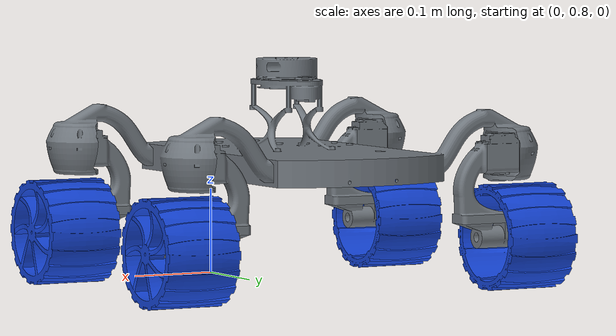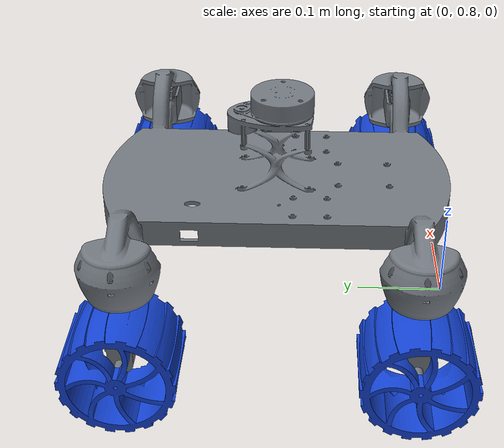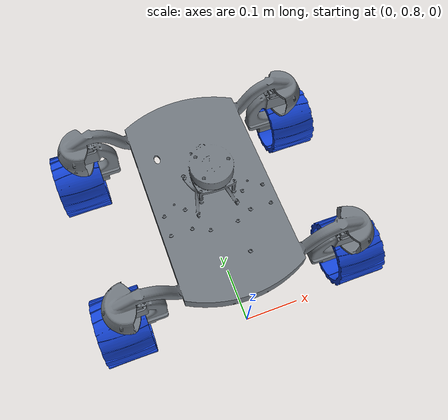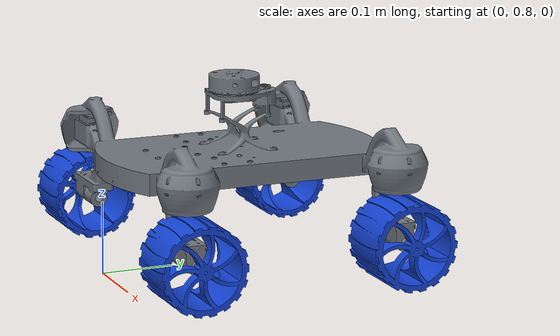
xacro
<?xml version="1.0"?>
<robot xmlns:xacro="http://www.ros.org/wiki/xacro" >

    <link name="base_link">

    </link>

    <joint name="chassis_joint" type="fixed">
        <parent link="base_link" />
        <child link="chassis_link"/>
        <origin rpy="0 0 0" xyz="0 1 .15"/>
    </joint>

    <link name="chassis_link">
        <visual>
            <origin rpy="${pi/2} 0 0" xyz="0 0 .01" />
            <geometry>
                <mesh filename="file:///home/joel/dev_ws/src/rover_one/description/G_Assy_Base.dae" scale="1 1 1"/>
            </geometry>
        </visual>
        <collision>
            <origin rpy="${pi/2} 0 0" xyz="0 0 .01" />
            <geometry>
                <mesh filename="file:///home/joel/dev_ws/src/rover_one/description/G_Assy_Base.dae" scale="1 1 1"/>
            </geometry>
        </collision>
    </link>

    <joint name="wheel_arm_RF_joint" type="revolute" >
        <parent link="chassis_link"/>
        <child link="wheel_arm_RF_link" />
        <origin rpy="0 0 0" xyz="-.2 -.15 .0375" />
        <axis xyz="0 0 1"/>
        <limit lower="0.7854" upper="-0.7854" effort="10.0" velocity="2.0"/>
    </joint>

    <link name="wheel_arm_RF_link" >
        <visual>
            <origin rpy="${pi/2} 0 ${pi/2}" xyz="0 0 0"/>+
            <geometry>
                <mesh filename="file:///home/joel/dev_ws/src/rover_one/description/G_Wheel_Arm.dae" scale="1 1 1"/>
            </geometry>
        </visual>
        <collision>
            <origin rpy="${pi/2} 0 ${pi/2}" xyz="0 0 0"/>+
            <geometry>
                <mesh filename="file:///home/joel/dev_ws/src/rover_one/description/G_Wheel_Arm.dae" scale="1 1 1"/>
            </geometry>
        </collision>
    </link>

    <joint name="wheel_arm_LF_joint" type="revolute" >
        <parent link="chassis_link"/>
        <child link="wheel_arm_LF_link" />
        <origin rpy="0 0 0" xyz=".2 -.15 .0375" />
        <axis xyz="0 0 1"/>
        <limit lower="0.7854" upper="-0.7854" effort="10.0" velocity="2.0"/>
    </joint>

    <link name="wheel_arm_LF_link" >
        <visual>
            <origin rpy="${pi/2} 0 -${pi/2}" xyz="0 0 0"/>+
            <geometry>
                <mesh filename="file:///home/joel/dev_ws/src/rover_one/description/G_Wheel_Arm.dae" scale="1 1 1"/>
            </geometry>
        </visual>
        <collision>
            <origin rpy="${pi/2} 0 -${pi/2}" xyz="0 0 0"/>+
            <geometry>
                <mesh filename="file:///home/joel/dev_ws/src/rover_one/description/G_Wheel_Arm.dae" scale="1 1 1"/>
            </geometry>
        </collision>
    </link>
    <!--Red x, green y, blue z -->
    <joint name="wheel_arm_RR_joint" type="revolute" >
        <parent link="chassis_link"/>
        <child link="wheel_arm_RR_link" />
        <origin rpy="0 0 0" xyz="-.2 .15 .0375" />
        <axis xyz="0 0 1"/>
        <limit lower="0.7854" upper="-0.7854" effort="10.0" velocity="2.0"/>
    </joint>

    <link name="wheel_arm_RR_link" >
        <visual>
            <origin rpy="${pi/2} 0 ${pi/2}" xyz="0 0 0"/>+
            <geometry>
                <mesh filename="file:///home/joel/dev_ws/src/rover_one/description/G_Wheel_Arm.dae" scale="1 1 1"/>
            </geometry>
        </visual>
        <collision>
            <origin rpy="${pi/2} 0 ${pi/2}" xyz="0 0 0"/>+
            <geometry>
                <mesh filename="file:///home/joel/dev_ws/src/rover_one/description/G_Wheel_Arm.dae" scale="1 1 1"/>
            </geometry>
        </collision>
    </link>

    <joint name="wheel_arm_LR_joint" type="revolute" >
        <parent link="chassis_link"/>
        <child link="wheel_arm_LR_link" />
        <origin rpy="0 0 0" xyz=".2 .15 .0375" />
        <axis xyz="0 0 1"/>
        <limit lower="0.7854" upper="-0.7854" effort="10.0" velocity="2.0"/>
    </joint>

    <link name="wheel_arm_LR_link" >
        <visual>
            <origin rpy="${pi/2} 0 -${pi/2}" xyz="0 0 0"/>
            <geometry>
                <mesh filename="file:///home/joel/dev_ws/src/rover_one/description/G_Wheel_Arm.dae" scale="1 1 1"/>
            </geometry>
        </visual>
        <collision>
            <origin rpy="${pi/2} 0 -${pi/2}" xyz="0 0 0"/>
            <geometry>
                <mesh filename="file:///home/joel/dev_ws/src/rover_one/description/G_Wheel_Arm.dae" scale="1 1 1"/>
            </geometry>
        </collision>
    </link>

    <!-- Wheels -->
    <joint name="wheel_RF_joint" type="continuous">
        <parent link="wheel_arm_RF_link"/>
        <child link="wheel_RF_link" />
        <origin rpy="0 0 0" xyz="-.038 0 -.125" />
        <axis xyz="1 0 0"/>
    </joint>

    <link name="wheel_RF_link">
        <visual>
            <origin rpy="0 0 0" xyz="0 0 0"/>
            <geometry>
                <mesh filename="file:///home/joel/dev_ws/src/rover_one/description/G_Wheel.dae" scale="1 1 1"/>
            </geometry>
        </visual>
        <collision>
            <origin rpy="0 0 0" xyz="0 0 0"/>
            <geometry>
                <mesh filename="file:///home/joel/dev_ws/src/rover_one/description/G_Wheel.dae" scale="1 1 1"/>
            </geometry>
        </collision>
    </link>

    <joint name="wheel_LF_joint" type="continuous">
        <parent link="wheel_arm_LF_link"/>
        <child link="wheel_LF_link" />
        <origin rpy="0 0 0" xyz=".038 0 -.125" />
        <axis xyz="1 0 0"/>
    </joint>

    <link name="wheel_LF_link">
        <visual>
            <origin rpy="0 0 ${pi}" xyz="0 0 0"/>
            <geometry>
                <mesh filename="file:///home/joel/dev_ws/src/rover_one/description/G_Wheel.dae" scale="1 1 1"/>
            </geometry>
        </visual>
        <collision>
            <origin rpy="0 0 ${pi}" xyz="0 0 0"/>
            <geometry>
                <mesh filename="file:///home/joel/dev_ws/src/rover_one/description/G_Wheel.dae" scale="1 1 1"/>
            </geometry>
        </collision>
    </link>

    <joint name="wheel_RR_joint" type="continuous">
        <parent link="wheel_arm_RR_link"/>
        <child link="wheel_RR_link"/>
        <origin rpy="0 0 0" xyz="-.038 0 -.125" />
        <axis xyz="1 0 0"/>
    </joint>

    <link name="wheel_RR_link">
        <visual>
            <origin rpy="0 0 0" xyz="0 0 0"/>
            <geometry>
                <mesh filename="file:///home/joel/dev_ws/src/rover_one/description/G_Wheel.dae" scale="1 1 1"/>
            </geometry>
        </visual>
        <collision>
            <origin rpy="0 0 0" xyz="0 0 0"/>
            <geometry>
                <mesh filename="file:///home/joel/dev_ws/src/rover_one/description/G_Wheel.dae" scale="1 1 1"/>
            </geometry>
        </collision>
    </link>

    <joint name="wheel_LR_joint" type="continuous">
        <parent link="wheel_arm_LR_link"/>
        <child link="wheel_LR_link" />
        <origin rpy="0 0 0" xyz=".038 0 -.125" />
        <axis xyz="1 0 0"/>
    </joint>

    <link name="wheel_LR_link">
        <visual>
        <origin rpy="0 0 ${pi}" xyz="0 0 0"/>
        <geometry>
            <mesh filename="file:///home/joel/dev_ws/src/rover_one/description/G_Wheel.dae" scale="1 1 1"/>
            </geometry>
        </visual>
        <collision>
        <origin rpy="0 0 ${pi}" xyz="0 0 0"/>
            <geometry>
                <mesh filename="file:///home/joel/dev_ws/src/rover_one/description/G_Wheel.dae" scale="1 1 1"/>
            </geometry>
        </collision>
    </link>

</robot>
